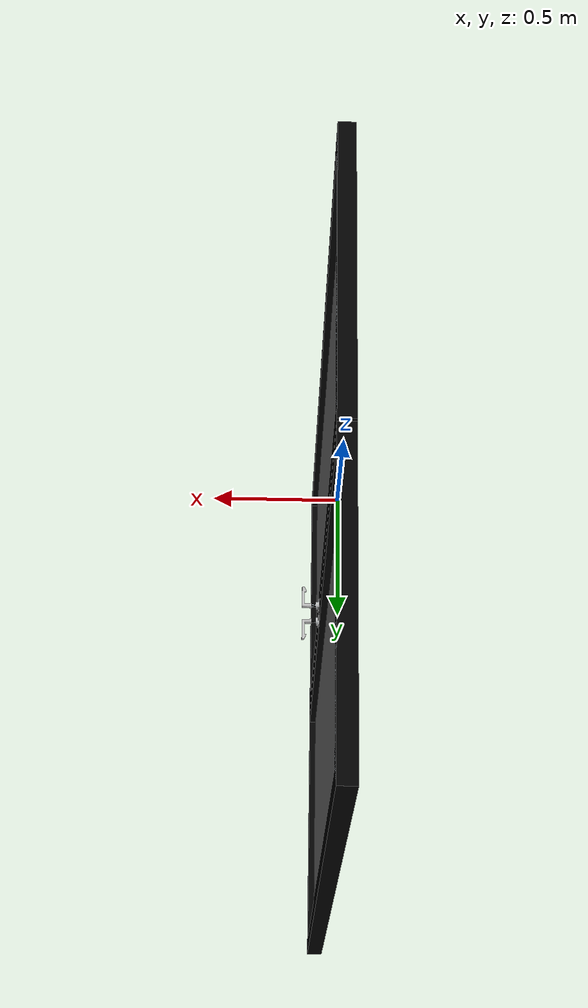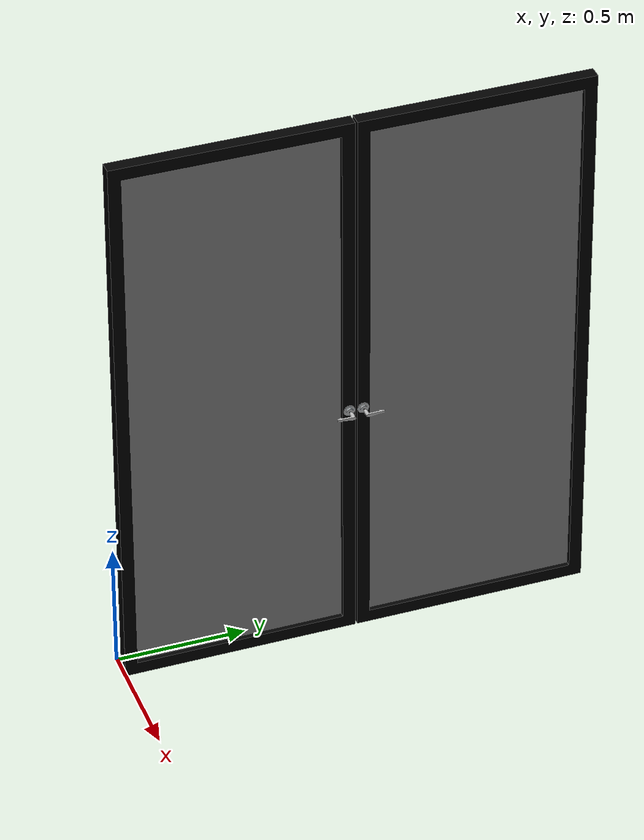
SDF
<?xml version="1.0" ?>
<sdf version="1.6">
  <model name="glassdoor">
    <static>true</static>
    <link name="link">
      <collision name="collision">
        <geometry>
          <mesh>
            <scale>1 1 1</scale>
            <uri>model://glassdoor/meshes/glassdoor.dae</uri>
          </mesh>
        </geometry>
      </collision>
      <visual name="visual">
        <geometry>
          <mesh>
            <scale>1 1 1</scale>
            <uri>model://glassdoor/meshes/glassdoor.dae</uri>
          </mesh>
        </geometry>
      </visual>
    </link>
  </model>
</sdf>
